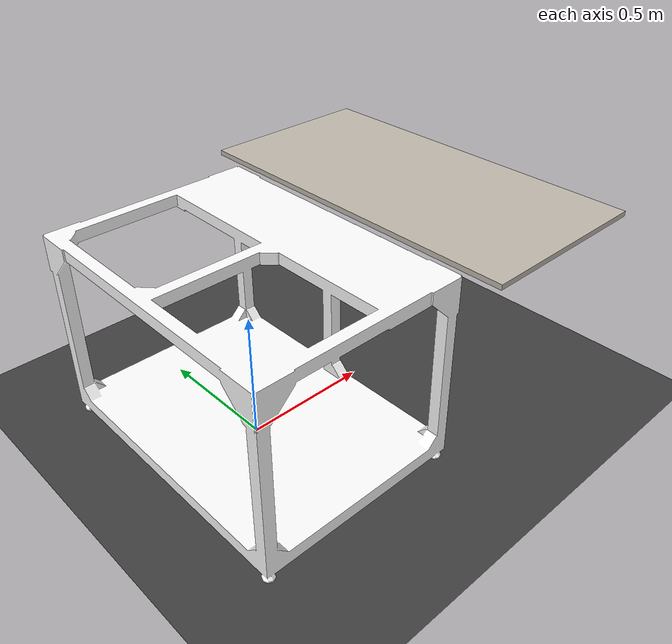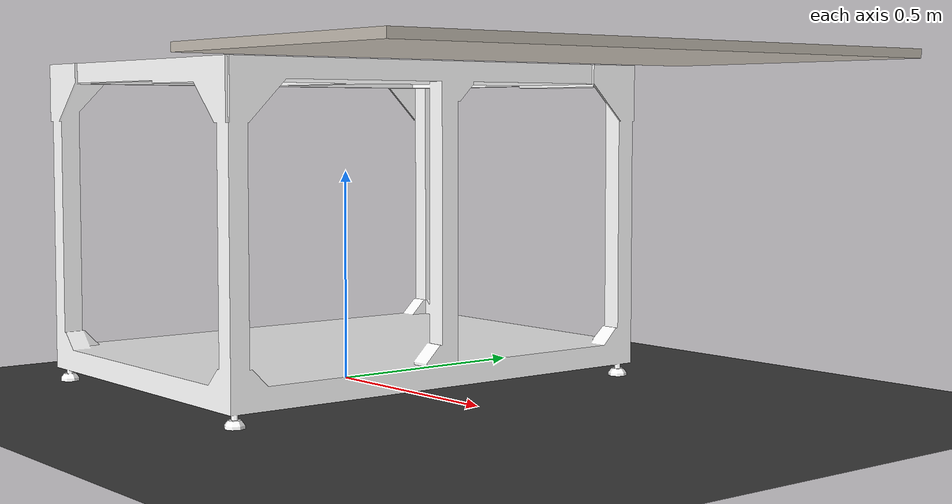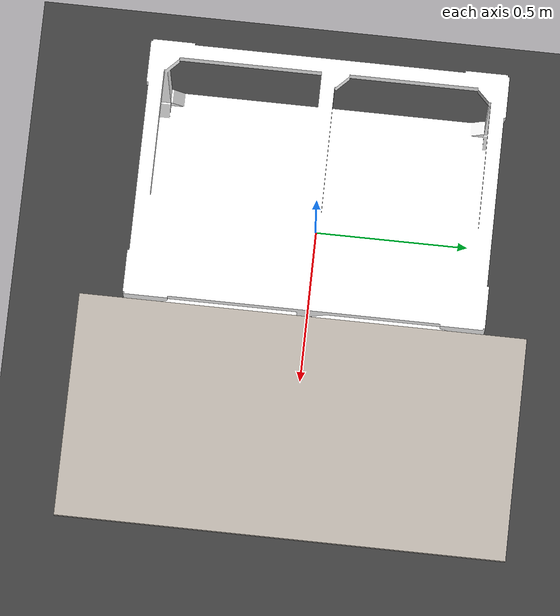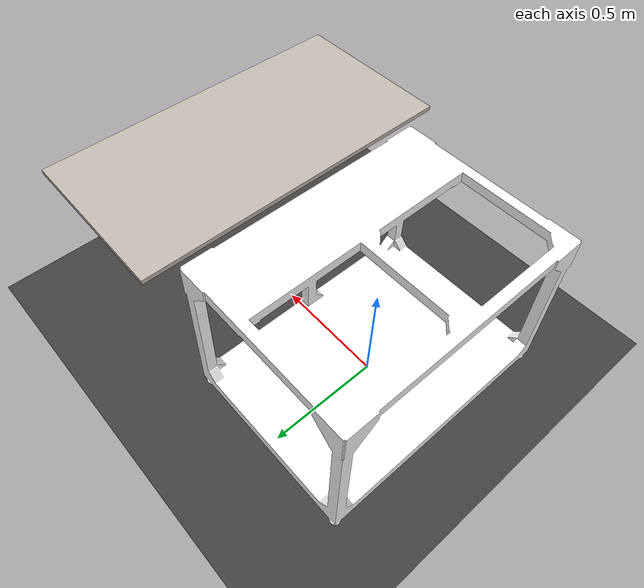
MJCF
<?xml version="1.0" ?>
<mujoco model="blocksuite_sim2real_scene">
  <compiler angle="radian" autolimits="true" meshdir="assets" balanceinertia="true" texturedir="assets"/>
  <option gravity="0 0 -9.81" integrator="implicitfast" impratio="20" noslip_iterations="5" cone="elliptic">
    <flag multiccd="enable"/>
  </option>
  <asset>
    <texture type="skybox" builtin="gradient" rgb1="0.3 0.5 0.7" rgb2="0 0 0" width="512" height="3072"/>
    <mesh name="robot_workstation" file="robot_workstation.obj" inertia="shell"/>
    <mesh name="modular_wall" file="modular_wall.obj" inertia="shell"/>
    <mesh name="window_frame" file="window_frame.obj" inertia="shell"/>
    <mesh name="back_wall_w_holes" file="back_wall_w_holes.obj" inertia="shell"/>
    <mesh name="window_background" file="window_background.obj" inertia="shell"/>
    <mesh name="table" file="table.obj" inertia="shell"/>
    <texture name="robot_workstation_tex" type="2d" file="textures/robot_workstation.png"/>
    <texture name="robot_workstation_nrm" type="2d" file="textures/robot_workstation_nrm.png" colorspace="linear"/>
    <material name="tex_robot_workstation">
      <layer texture="robot_workstation_tex" role="rgb"/>
      <layer texture="robot_workstation_nrm" role="normal"/>
    </material>
    <texture name="modular_wall_tex" type="2d" file="textures/modular_wall.png"/>
    <texture name="modular_wall_nrm" type="2d" file="textures/modular_wall_nrm.png" colorspace="linear"/>
    <material name="tex_modular_wall">
      <layer texture="modular_wall_tex" role="rgb"/>
      <layer texture="modular_wall_nrm" role="normal"/>
    </material>
    <texture name="table_tex" type="2d" file="textures/table.png"/>
    <material name="tex_table" texture="table_tex"/>
    <texture name="grid" type="2d" builtin="checker" rgb1="0.2 0.2 0.2" rgb2="0.3 0.3 0.3" width="512" height="512"/>
    <material name="grid" texture="grid" texrepeat="4 4" reflectance="0.1"/>
    <material name="table_mat" rgba="0.40 0.28 0.18 1"/>
    <material name="wall_mat" rgba="0.60 0.60 0.62 1"/>
    <material name="scenery_mat" rgba="0.45 0.47 0.50 1"/>
    <material name="decor_mat" rgba="0.55 0.65 0.75 0.5"/>
  </asset>
  <worldbody>
    <light name="top" pos="0.29 0 3.737" dir="0 0 -1" directional="true" diffuse="0.6 0.6 0.6" castshadow="false"/>
    <geom name="floor" type="plane" pos="0.29 0 0" size="0 0 0.05" material="grid"/>
    <!-- robot_workstation: workstation / scenery -->
    <body name="robot_workstation" pos="0 0 0" quat="0.707107 0 0 -0.707107">
      <geom name="robot_workstation_visual" type="mesh" mesh="robot_workstation" material="tex_robot_workstation" contype="0" conaffinity="0" group="2"/>
      <geom name="robot_workstation_collision" type="box" pos="0 0.000460505 0.376422" quat="1 0 0 0" size="0.568002 0.411 0.376911" rgba="0 0 0 0" group="3"/>
    </body>
    <!-- modular_wall_left_1: boundary wall -->
    <!-- modular_wall_right_1: boundary wall -->
    <!-- modular_wall_right_0: boundary wall -->
    <!-- modular_wall_left_0: boundary wall -->
    <!-- window_frame_bottom: decor (visual only) -->
    <!-- window_frame_top: decor (visual only) -->
    <!-- wall: boundary wall -->
    <!-- window_background_bottom: decor (visual only) -->
    <!-- window_background_top: decor (visual only) -->
    <!-- workspace_table: manipulation table (primary collider) -->
    <body name="workspace_table" pos="0.7788 0 0.7643" quat="0.707107 0 0 -0.707107">
      <geom name="workspace_table_visual" type="mesh" mesh="table" material="tex_table" contype="0" conaffinity="0" group="2"/>
      <geom name="workspace_table_collision" type="box" pos="0 0 0" quat="1 0 0 0" size="0.35 0.7 0.01" rgba="0 0 0 0" group="3"/>
    </body>
    <!-- Robot base mounts at the frame origin (robot-base frame). -->
    <body name="robot_mount" pos="0.29 0 0.737">
      <site name="robot_attachment" pos="0 0 0" size="0.02" rgba="1 0 0 1" group="3"/>
    </body>
  </worldbody>
</mujoco>
